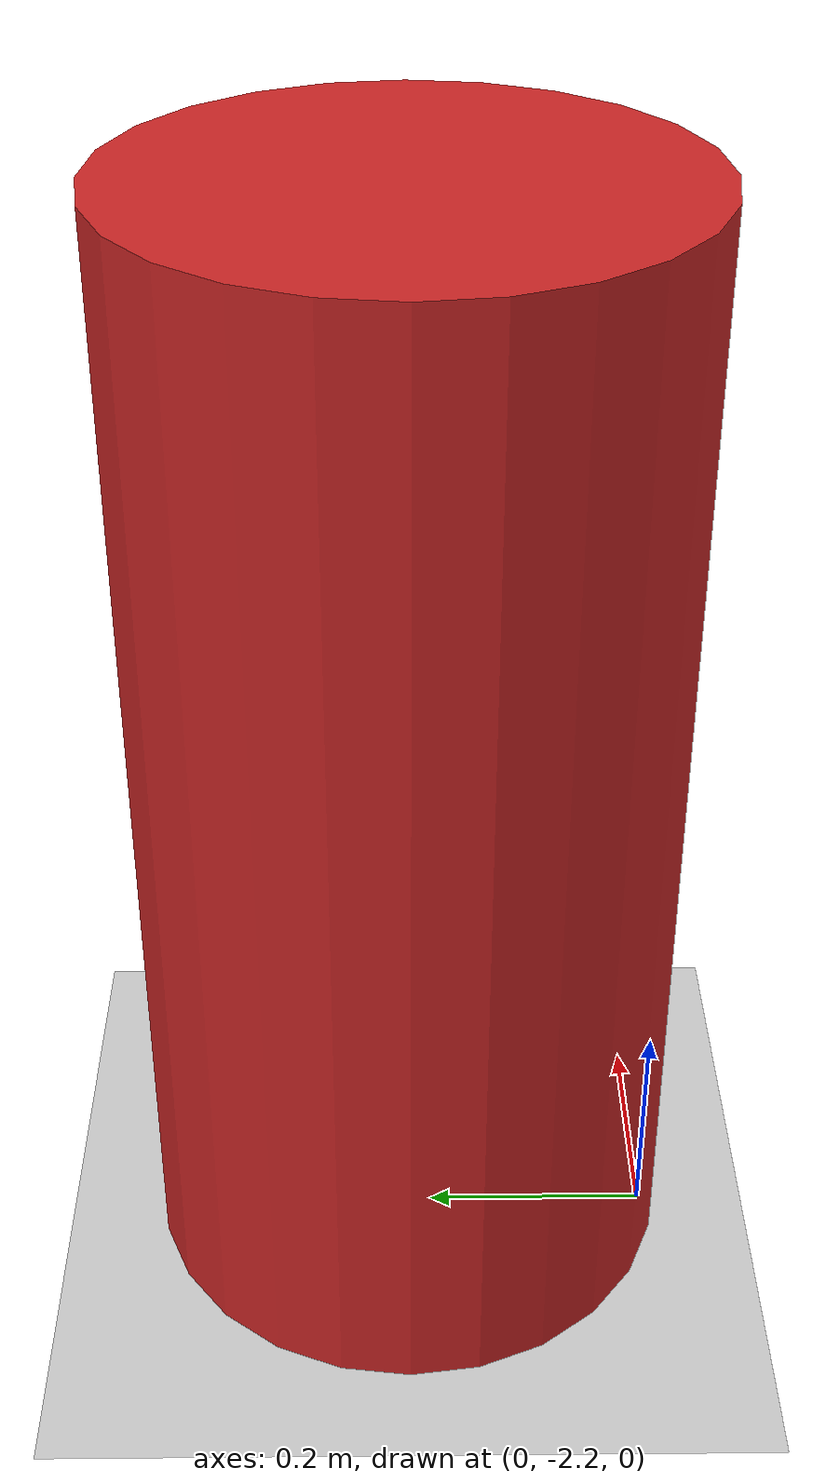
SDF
<sdf version="1.7">
 <world name="default">
  <model name="ground_plane">
   <static>1</static>
   <link name="link">
    <collision name="collision">
     <geometry><plane><normal>0 0 1</normal><size>100 100</size></plane></geometry>
     <surface>
      <contact><collide_bitmask>65535</collide_bitmask></contact>
      <friction><ode><mu>100</mu><mu2>50</mu2></ode></friction>
     </surface>
    </collision>
    <visual name="visual">
     <cast_shadows>0</cast_shadows>
     <geometry><plane><normal>0 0 1</normal><size>100 100</size></plane></geometry>
     <material>
      <script><uri>file://media/materials/scripts/gazebo.material</uri><name>Gazebo/Grey</name></script>
     </material>
    </visual>
   </link>
  </model>
  <model name="my_room">
   <link name="link_0_clone_0">
    <inertial>
     <mass>0.22579</mass>
     <inertia>
      <ixx>0.0220021</ixx>
      <ixy>0</ixy>
      <ixz>0</ixz>
      <iyy>0.0220021</iyy>
      <iyz>0</iyz>
      <izz>0.00637244</izz>
     </inertia>
    </inertial>
    <pose>-0.012744 -2.25733 0.125 0 -0 0</pose>
    <visual name="visual">
     <geometry><cylinder><radius>0.237583</radius><length>1</length></cylinder></geometry>
     <material>
      <lighting>1</lighting>
      <script><uri>file://media/materials/scripts/gazebo.material</uri><name>Gazebo/Red</name></script>
      <shader type="pixel"><normal_map>__default__</normal_map></shader>
      <ambient>1 0 0 1</ambient>
      <diffuse>1 0 0 1</diffuse>
      <specular>0.1 0.1 0.1 1</specular>
      <emissive>0 0 0 1</emissive>
     </material>
    </visual>
    <collision name="collision">
     <geometry><cylinder><radius>0.237583</radius><length>1</length></cylinder></geometry>
     <surface>
      <friction>
       <ode><mu>1</mu><mu2>1</mu2><fdir1>0 0 0</fdir1><slip1>0</slip1><slip2>0</slip2></ode>
       <torsional>
        <coefficient>1</coefficient>
        <patch_radius>0</patch_radius>
        <surface_radius>0</surface_radius>
        <use_patch_radius>1</use_patch_radius>
        <ode><slip>0</slip></ode>
       </torsional>
      </friction>
      <bounce><restitution_coefficient>0</restitution_coefficient><threshold>1e+06</threshold></bounce>
      <contact>
       <collide_without_contact>0</collide_without_contact>
       <collide_without_contact_bitmask>1</collide_without_contact_bitmask>
       <collide_bitmask>1</collide_bitmask>
       <ode>
        <soft_cfm>0</soft_cfm>
        <soft_erp>0.2</soft_erp>
        <kp>1e+13</kp>
        <kd>1</kd>
        <max_vel>0.01</max_vel>
        <min_depth>0</min_depth>
       </ode>
       <bullet>
        <split_impulse>1</split_impulse>
        <split_impulse_penetration_threshold>-0.01</split_impulse_penetration_threshold>
        <soft_cfm>0</soft_cfm>
        <soft_erp>0.2</soft_erp>
        <kp>1e+13</kp>
        <kd>1</kd>
       </bullet>
      </contact>
     </surface>
    </collision>
   </link>
   <static>0</static>
   <pose>0.037205 0.279773 0.375 0 -0 0</pose>
  </model>
 </world>
</sdf>
